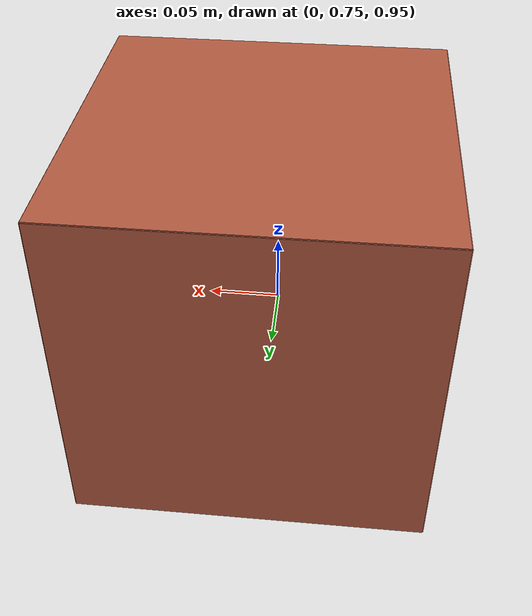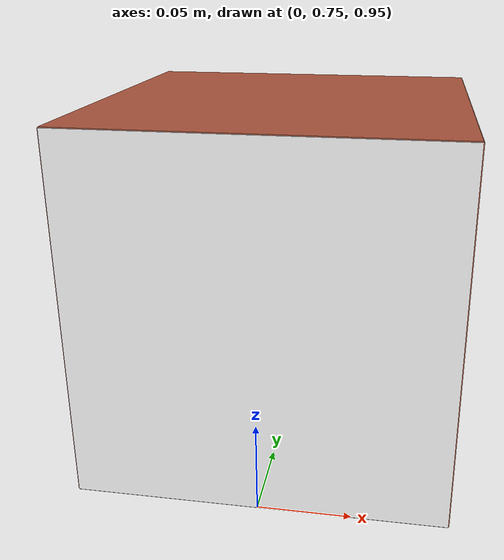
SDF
<?xml version="1.0" ?>
<sdf version="1.6">
  <world name="calibration">
    <physics name="default_physics" default="0" type="ode">
      <gravity>0 0 -9.8066</gravity>
      <ode>
        <solver>
          <iters>10</iters>
          <sor>1.3</sor>
        </solver>
      </ode>
      <max_step_size>0.01</max_step_size>
    </physics>

    <scene>
      <ambient>0.4 0.4 0.4</ambient>
      <background>0.7 0.7 0.7</background>
    </scene>

    <!-- Ground plane -->
    <include>
      <uri>model://ground plane</uri>
    </include>

    <!-- Sun -->
    <include>
      <uri>model://sun</uri>
    </include>

    <include>
      <name>aruco box</name>
      <uri>model://aruco box</uri>
      <pose>0.0 0.85 1.05 0 0 -1.570796326794</pose>
      <static>true</static>
    </include>

  </world>
</sdf>

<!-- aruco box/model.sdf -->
<sdf version="1.9">
  <model name="box_1">
    <pose>0 0 0.1 0 0 0</pose>
    <static>false</static>

    <link name="link">
      <inertial>
        <mass>0.5</mass>
        <inertia>
          <ixx>0.006667</ixx>
          <iyy>0.006667</iyy>
          <izz>0.006667</izz>
          <ixy>0</ixy>
          <ixz>0</ixz>
          <iyz>0</iyz>
        </inertia>
      </inertial>

      <!-- Collision geometry -->
      <collision name="collision">
        <geometry>
          <box>
            <size>0.2 0.2 0.2</size>
          </box>
        </geometry>
        <surface>
          <friction>
            <ode>
              <mu>0.8</mu>
              <mu2>0.8</mu2>
            </ode>
          </friction>
          <contact>
            <ode>
              <kp>1e6</kp>
              <kd>100</kd>
            </ode>
          </contact>
        </surface>
      </collision>

      <!-- Visual geometry - Front face with ArUco tag -->
      <visual name="visual_front">
        <pose>0.1 0 0 0 0 0</pose>
        <geometry>
          <box>
            <size>0.001 0.2 0.2</size>
          </box>
        </geometry>
        <material>
          <ambient>1 1 1 1</ambient>
          <diffuse>1 1 1 1</diffuse>
          <specular>0.1 0.1 0.1 1</specular>
          <pbr>
            <metal>
              <albedo_map>aruco_582.png</albedo_map>
            </metal>
          </pbr>
        </material>
      </visual>

      <!-- Visual geometry - Back face (brick color) -->
      <visual name="visual_back">
        <pose>-0.1 0 0 0 0 0</pose>
        <geometry>
          <box>
            <size>0.001 0.2 0.2</size>
          </box>
        </geometry>
        <material>
          <ambient>0.6 0.3 0.2 1</ambient>
          <diffuse>0.7 0.35 0.25 1</diffuse>
          <specular>0.1 0.05 0.05 1</specular>
        </material>
      </visual>

      <!-- Visual geometry - Left face (brick color) -->
      <visual name="visual_left">
        <pose>0 0.1 0 0 0 0</pose>
        <geometry>
          <box>
            <size>0.2 0.001 0.2</size>
          </box>
        </geometry>
        <material>
          <ambient>0.6 0.3 0.2 1</ambient>
          <diffuse>0.7 0.35 0.25 1</diffuse>
          <specular>0.1 0.05 0.05 1</specular>
        </material>
      </visual>

      <!-- Visual geometry - Right face (brick color) -->
      <visual name="visual_right">
        <pose>0 -0.1 0 0 0 0</pose>
        <geometry>
          <box>
            <size>0.2 0.001 0.2</size>
          </box>
        </geometry>
        <material>
          <ambient>0.6 0.3 0.2 1</ambient>
          <diffuse>0.7 0.35 0.25 1</diffuse>
          <specular>0.1 0.05 0.05 1</specular>
        </material>
      </visual>

      <!-- Visual geometry - Top face (brick color) -->
      <visual name="visual_top">
        <pose>0 0 0.1 0 0 0</pose>
        <geometry>
          <box>
            <size>0.2 0.2 0.001</size>
          </box>
        </geometry>
        <material>
          <ambient>0.6 0.3 0.2 1</ambient>
          <diffuse>0.7 0.35 0.25 1</diffuse>
          <specular>0.1 0.05 0.05 1</specular>
        </material>
      </visual>

      <!-- Visual geometry - Bottom face (brick color) -->
      <visual name="visual_bottom">
        <pose>0 0 -0.1 0 0 0</pose>
        <geometry>
          <box>
            <size>0.2 0.2 0.001</size>
          </box>
        </geometry>
        <material>
          <ambient>0.6 0.3 0.2 1</ambient>
          <diffuse>0.7 0.35 0.25 1</diffuse>
          <specular>0.1 0.05 0.05 1</specular>
        </material>
      </visual>

    </link>
  </model>
</sdf>
